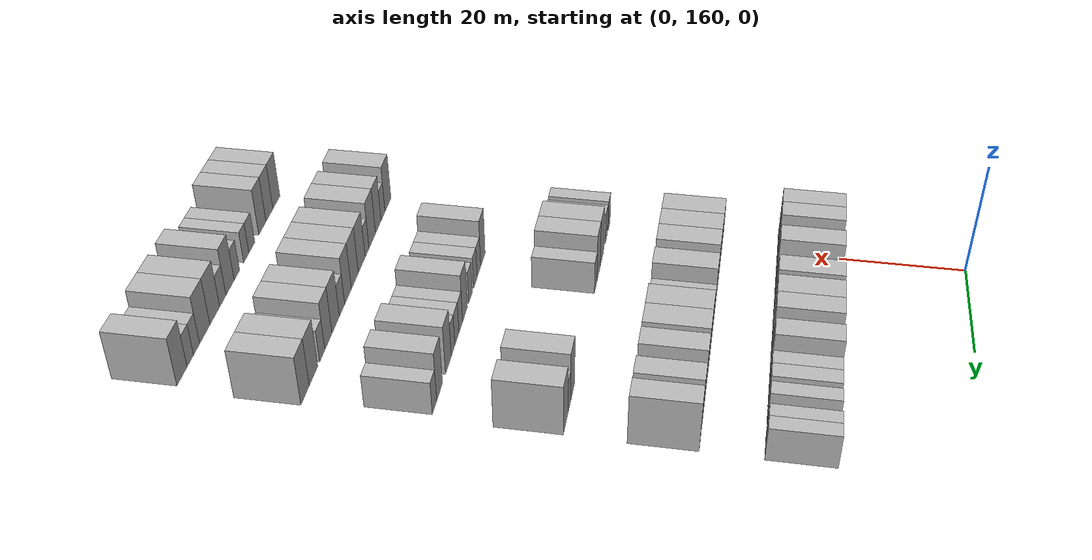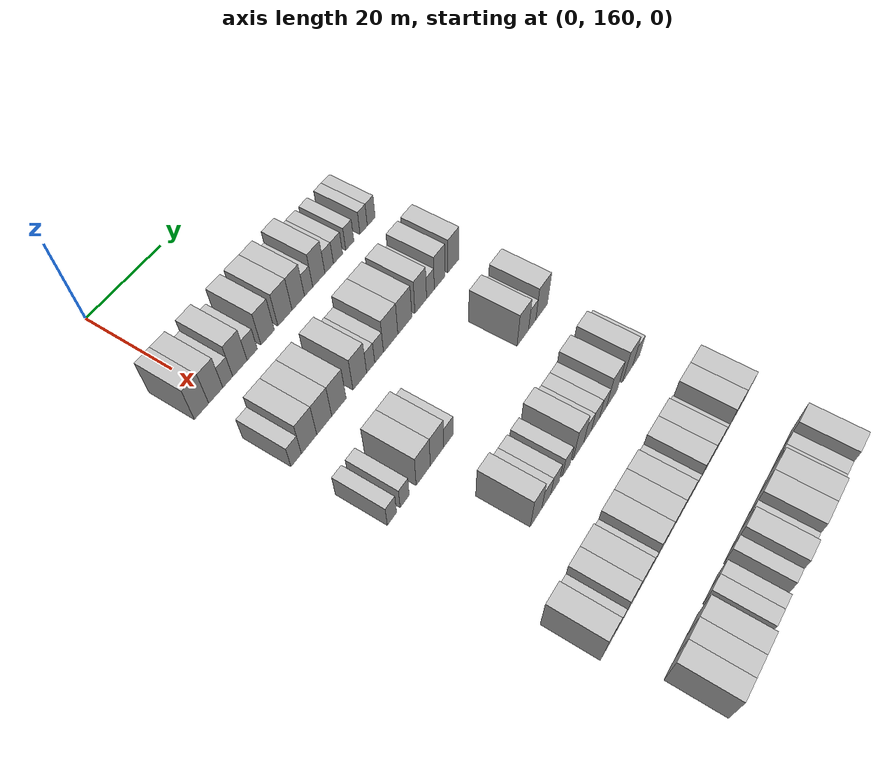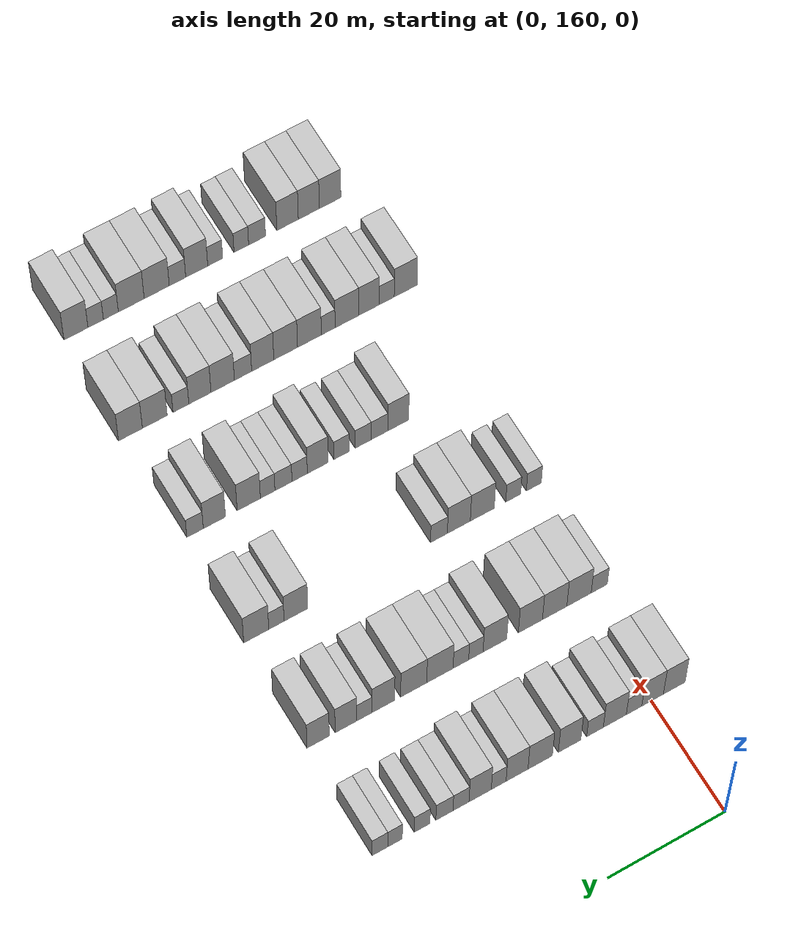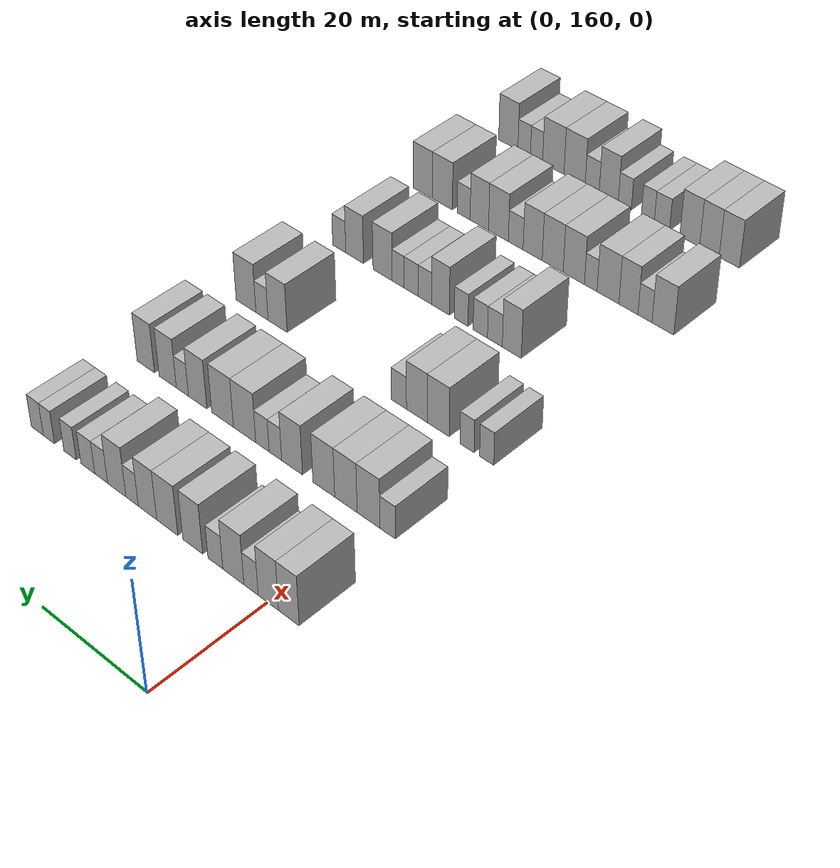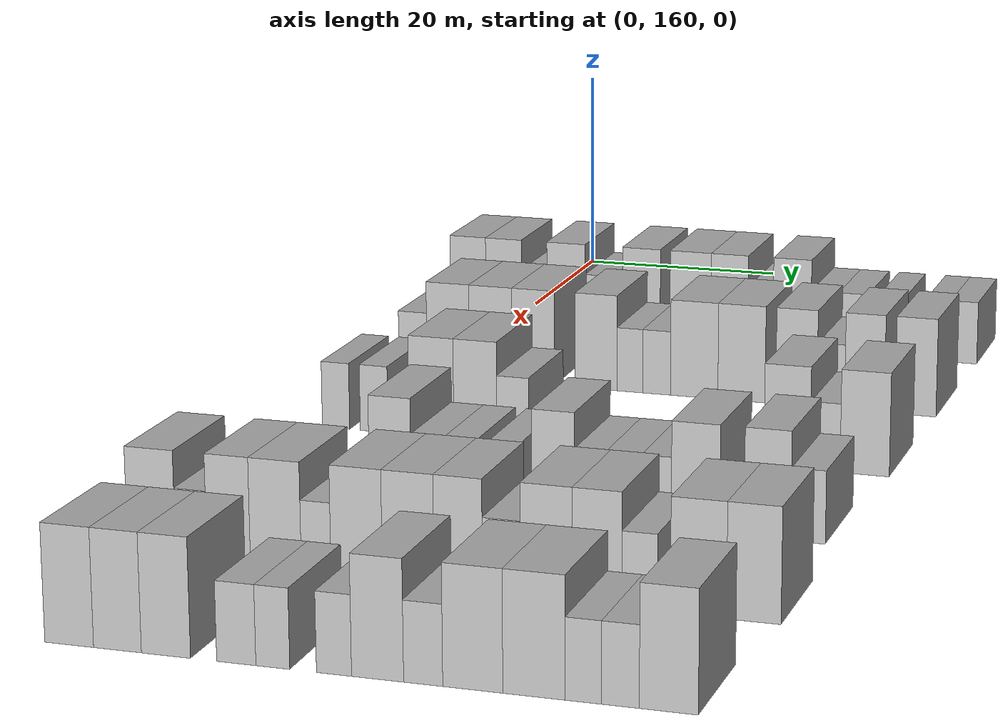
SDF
<sdf version="1.6">
 <world name="default">
  <model name="building_120">
   <static>1</static>
   <pose>25.0000 156.1392 0 0.000000 0.000000 0.000000</pose>
   <link name="link">
    <pose>0 0 4.50 0 0 0</pose>
    <collision name="collision"><geometry><box><size>10.0000 3.7222 9.0000</size></box></geometry></collision>
    <visual name="visual">
     <cast_shadows>0</cast_shadows>
     <geometry><box><size>10.0000 3.7222 9.0000</size></box></geometry>
     <material>
      <script>
       <uri>model://HANNAS_wall/materials/scripts</uri>
       <uri>model://HANNAS_wall/materials/textures</uri>
       <name>vrc/HANNAS_wall</name>
      </script>
     </material>
    </visual>
   </link>
  </model>
  <model name="building_121">
   <static>1</static>
   <pose>25.0000 159.8605 0 0.000000 0.000000 0.000000</pose>
   <link name="link">
    <pose>0 0 4.50 0 0 0</pose>
    <collision name="collision"><geometry><box><size>10.0000 3.7204 9.0000</size></box></geometry></collision>
    <visual name="visual">
     <cast_shadows>0</cast_shadows>
     <geometry><box><size>10.0000 3.7204 9.0000</size></box></geometry>
     <material>
      <script>
       <uri>model://HANNAS_wall/materials/scripts</uri>
       <uri>model://HANNAS_wall/materials/textures</uri>
       <name>vrc/HANNAS_wall</name>
      </script>
     </material>
    </visual>
   </link>
  </model>
  <model name="building_122">
   <static>1</static>
   <pose>25.0000 163.0452 0 0.000000 0.000000 0.000000</pose>
   <link name="link">
    <pose>0 0 3.00 0 0 0</pose>
    <collision name="collision"><geometry><box><size>10.0000 2.6491 6.0000</size></box></geometry></collision>
    <visual name="visual">
     <cast_shadows>0</cast_shadows>
     <geometry><box><size>10.0000 2.6491 6.0000</size></box></geometry>
     <material>
      <script>
       <uri>model://HANNAS_wall/materials/scripts</uri>
       <uri>model://HANNAS_wall/materials/textures</uri>
       <name>vrc/HANNAS_wall</name>
      </script>
     </material>
    </visual>
   </link>
  </model>
  <model name="building_123">
   <static>1</static>
   <pose>25.0000 166.3404 0 0.000000 0.000000 0.000000</pose>
   <link name="link">
    <pose>0 0 4.50 0 0 0</pose>
    <collision name="collision"><geometry><box><size>10.0000 3.9413 9.0000</size></box></geometry></collision>
    <visual name="visual">
     <cast_shadows>0</cast_shadows>
     <geometry><box><size>10.0000 3.9413 9.0000</size></box></geometry>
     <material>
      <script>
       <uri>model://HANNAS_wall/materials/scripts</uri>
       <uri>model://HANNAS_wall/materials/textures</uri>
       <name>vrc/HANNAS_wall</name>
      </script>
     </material>
    </visual>
   </link>
  </model>
  <model name="building_124">
   <static>1</static>
   <pose>25.0000 169.7252 0 0.000000 0.000000 0.000000</pose>
   <link name="link">
    <pose>0 0 3.00 0 0 0</pose>
    <collision name="collision"><geometry><box><size>10.0000 2.8284 6.0000</size></box></geometry></collision>
    <visual name="visual">
     <cast_shadows>0</cast_shadows>
     <geometry><box><size>10.0000 2.8284 6.0000</size></box></geometry>
     <material>
      <script>
       <uri>model://HANNAS_wall/materials/scripts</uri>
       <uri>model://HANNAS_wall/materials/textures</uri>
       <name>vrc/HANNAS_wall</name>
      </script>
     </material>
    </visual>
   </link>
  </model>
  <model name="building_125">
   <static>1</static>
   <pose>25.0000 174.0568 0 0.000000 0.000000 0.000000</pose>
   <link name="link">
    <pose>0 0 4.50 0 0 0</pose>
    <collision name="collision"><geometry><box><size>10.0000 3.8347 9.0000</size></box></geometry></collision>
    <visual name="visual">
     <cast_shadows>0</cast_shadows>
     <geometry><box><size>10.0000 3.8347 9.0000</size></box></geometry>
     <material>
      <script>
       <uri>model://HANNAS_wall/materials/scripts</uri>
       <uri>model://HANNAS_wall/materials/textures</uri>
       <name>vrc/HANNAS_wall</name>
      </script>
     </material>
    </visual>
   </link>
  </model>
  <model name="building_126">
   <static>1</static>
   <pose>25.0000 179.0432 0 0.000000 0.000000 0.000000</pose>
   <link name="link">
    <pose>0 0 4.50 0 0 0</pose>
    <collision name="collision"><geometry><box><size>10.0000 4.1382 9.0000</size></box></geometry></collision>
    <visual name="visual">
     <cast_shadows>0</cast_shadows>
     <geometry><box><size>10.0000 4.1382 9.0000</size></box></geometry>
     <material>
      <script>
       <uri>model://HANNAS_wall/materials/scripts</uri>
       <uri>model://HANNAS_wall/materials/textures</uri>
       <name>vrc/HANNAS_wall</name>
      </script>
     </material>
    </visual>
   </link>
  </model>
  <model name="building_127">
   <static>1</static>
   <pose>25.0000 182.9619 0 0.000000 0.000000 0.000000</pose>
   <link name="link">
    <pose>0 0 4.50 0 0 0</pose>
    <collision name="collision"><geometry><box><size>10.0000 3.6990 9.0000</size></box></geometry></collision>
    <visual name="visual">
     <cast_shadows>0</cast_shadows>
     <geometry><box><size>10.0000 3.6990 9.0000</size></box></geometry>
     <material>
      <script>
       <uri>model://HANNAS_wall/materials/scripts</uri>
       <uri>model://HANNAS_wall/materials/textures</uri>
       <name>vrc/HANNAS_wall</name>
      </script>
     </material>
    </visual>
   </link>
  </model>
  <model name="building_128">
   <static>1</static>
   <pose>25.0000 186.0585 0 0.000000 0.000000 0.000000</pose>
   <link name="link">
    <pose>0 0 3.00 0 0 0</pose>
    <collision name="collision"><geometry><box><size>10.0000 2.4944 6.0000</size></box></geometry></collision>
    <visual name="visual">
     <cast_shadows>0</cast_shadows>
     <geometry><box><size>10.0000 2.4944 6.0000</size></box></geometry>
     <material>
      <script>
       <uri>model://HANNAS_wall/materials/scripts</uri>
       <uri>model://HANNAS_wall/materials/textures</uri>
       <name>vrc/HANNAS_wall</name>
      </script>
     </material>
    </visual>
   </link>
  </model>
  <model name="building_129">
   <static>1</static>
   <pose>25.0000 189.1773 0 0.000000 0.000000 0.000000</pose>
   <link name="link">
    <pose>0 0 4.50 0 0 0</pose>
    <collision name="collision"><geometry><box><size>10.0000 3.7433 9.0000</size></box></geometry></collision>
    <visual name="visual">
     <cast_shadows>0</cast_shadows>
     <geometry><box><size>10.0000 3.7433 9.0000</size></box></geometry>
     <material>
      <script>
       <uri>model://HANNAS_wall/materials/scripts</uri>
       <uri>model://HANNAS_wall/materials/textures</uri>
       <name>vrc/HANNAS_wall</name>
      </script>
     </material>
    </visual>
   </link>
  </model>
  <model name="building_130">
   <static>1</static>
   <pose>25.0000 192.3889 0 0.000000 0.000000 0.000000</pose>
   <link name="link">
    <pose>0 0 3.00 0 0 0</pose>
    <collision name="collision"><geometry><box><size>10.0000 2.6798 6.0000</size></box></geometry></collision>
    <visual name="visual">
     <cast_shadows>0</cast_shadows>
     <geometry><box><size>10.0000 2.6798 6.0000</size></box></geometry>
     <material>
      <script>
       <uri>model://HANNAS_wall/materials/scripts</uri>
       <uri>model://HANNAS_wall/materials/textures</uri>
       <name>vrc/HANNAS_wall</name>
      </script>
     </material>
    </visual>
   </link>
  </model>
  <model name="building_131">
   <static>1</static>
   <pose>25.0000 195.1668 0 0.000000 0.000000 0.000000</pose>
   <link name="link">
    <pose>0 0 3.00 0 0 0</pose>
    <collision name="collision"><geometry><box><size>10.0000 2.8759 6.0000</size></box></geometry></collision>
    <visual name="visual">
     <cast_shadows>0</cast_shadows>
     <geometry><box><size>10.0000 2.8759 6.0000</size></box></geometry>
     <material>
      <script>
       <uri>model://HANNAS_wall/materials/scripts</uri>
       <uri>model://HANNAS_wall/materials/textures</uri>
       <name>vrc/HANNAS_wall</name>
      </script>
     </material>
    </visual>
   </link>
  </model>
  <model name="building_132">
   <static>1</static>
   <pose>25.0000 198.9132 0 0.000000 0.000000 0.000000</pose>
   <link name="link">
    <pose>0 0 3.00 0 0 0</pose>
    <collision name="collision"><geometry><box><size>10.0000 2.6169 6.0000</size></box></geometry></collision>
    <visual name="visual">
     <cast_shadows>0</cast_shadows>
     <geometry><box><size>10.0000 2.6169 6.0000</size></box></geometry>
     <material>
      <script>
       <uri>model://HANNAS_wall/materials/scripts</uri>
       <uri>model://HANNAS_wall/materials/textures</uri>
       <name>vrc/HANNAS_wall</name>
      </script>
     </material>
    </visual>
   </link>
  </model>
  <model name="building_133">
   <static>1</static>
   <pose>25.0000 203.4217 0 0.000000 0.000000 0.000000</pose>
   <link name="link">
    <pose>0 0 3.00 0 0 0</pose>
    <collision name="collision"><geometry><box><size>10.0000 2.4001 6.0000</size></box></geometry></collision>
    <visual name="visual">
     <cast_shadows>0</cast_shadows>
     <geometry><box><size>10.0000 2.4001 6.0000</size></box></geometry>
     <material>
      <script>
       <uri>model://HANNAS_wall/materials/scripts</uri>
       <uri>model://HANNAS_wall/materials/textures</uri>
       <name>vrc/HANNAS_wall</name>
      </script>
     </material>
    </visual>
   </link>
  </model>
  <model name="building_134">
   <static>1</static>
   <pose>25.0000 205.9325 0 0.000000 0.000000 0.000000</pose>
   <link name="link">
    <pose>0 0 3.00 0 0 0</pose>
    <collision name="collision"><geometry><box><size>10.0000 2.6216 6.0000</size></box></geometry></collision>
    <visual name="visual">
     <cast_shadows>0</cast_shadows>
     <geometry><box><size>10.0000 2.6216 6.0000</size></box></geometry>
     <material>
      <script>
       <uri>model://HANNAS_wall/materials/scripts</uri>
       <uri>model://HANNAS_wall/materials/textures</uri>
       <name>vrc/HANNAS_wall</name>
      </script>
     </material>
    </visual>
   </link>
  </model>
  <model name="building_296">
   <static>1</static>
   <pose>44.0000 157.2498 0 0.000000 0.000000 0.000000</pose>
   <link name="link">
    <pose>0 0 3.00 0 0 0</pose>
    <collision name="collision"><geometry><box><size>10.0000 2.7918 6.0000</size></box></geometry></collision>
    <visual name="visual">
     <cast_shadows>0</cast_shadows>
     <geometry><box><size>10.0000 2.7918 6.0000</size></box></geometry>
     <material>
      <script>
       <uri>model://HANNAS_wall/materials/scripts</uri>
       <uri>model://HANNAS_wall/materials/textures</uri>
       <name>vrc/HANNAS_wall</name>
      </script>
     </material>
    </visual>
   </link>
  </model>
  <model name="building_297">
   <static>1</static>
   <pose>44.0000 160.7525 0 0.000000 0.000000 0.000000</pose>
   <link name="link">
    <pose>0 0 4.50 0 0 0</pose>
    <collision name="collision"><geometry><box><size>10.0000 4.2136 9.0000</size></box></geometry></collision>
    <visual name="visual">
     <cast_shadows>0</cast_shadows>
     <geometry><box><size>10.0000 4.2136 9.0000</size></box></geometry>
     <material>
      <script>
       <uri>model://HANNAS_wall/materials/scripts</uri>
       <uri>model://HANNAS_wall/materials/textures</uri>
       <name>vrc/HANNAS_wall</name>
      </script>
     </material>
    </visual>
   </link>
  </model>
  <model name="building_298">
   <static>1</static>
   <pose>44.0000 164.9583 0 0.000000 0.000000 0.000000</pose>
   <link name="link">
    <pose>0 0 4.50 0 0 0</pose>
    <collision name="collision"><geometry><box><size>10.0000 4.1980 9.0000</size></box></geometry></collision>
    <visual name="visual">
     <cast_shadows>0</cast_shadows>
     <geometry><box><size>10.0000 4.1980 9.0000</size></box></geometry>
     <material>
      <script>
       <uri>model://HANNAS_wall/materials/scripts</uri>
       <uri>model://HANNAS_wall/materials/textures</uri>
       <name>vrc/HANNAS_wall</name>
      </script>
     </material>
    </visual>
   </link>
  </model>
  <model name="building_299">
   <static>1</static>
   <pose>44.0000 169.1252 0 0.000000 0.000000 0.000000</pose>
   <link name="link">
    <pose>0 0 4.50 0 0 0</pose>
    <collision name="collision"><geometry><box><size>10.0000 4.1358 9.0000</size></box></geometry></collision>
    <visual name="visual">
     <cast_shadows>0</cast_shadows>
     <geometry><box><size>10.0000 4.1358 9.0000</size></box></geometry>
     <material>
      <script>
       <uri>model://HANNAS_wall/materials/scripts</uri>
       <uri>model://HANNAS_wall/materials/textures</uri>
       <name>vrc/HANNAS_wall</name>
      </script>
     </material>
    </visual>
   </link>
  </model>
  <model name="building_300">
   <static>1</static>
   <pose>44.0000 175.2181 0 0.000000 0.000000 0.000000</pose>
   <link name="link">
    <pose>0 0 4.50 0 0 0</pose>
    <collision name="collision"><geometry><box><size>10.0000 4.0500 9.0000</size></box></geometry></collision>
    <visual name="visual">
     <cast_shadows>0</cast_shadows>
     <geometry><box><size>10.0000 4.0500 9.0000</size></box></geometry>
     <material>
      <script>
       <uri>model://HANNAS_wall/materials/scripts</uri>
       <uri>model://HANNAS_wall/materials/textures</uri>
       <name>vrc/HANNAS_wall</name>
      </script>
     </material>
    </visual>
   </link>
  </model>
  <model name="building_301">
   <static>1</static>
   <pose>44.0000 178.4672 0 0.000000 0.000000 0.000000</pose>
   <link name="link">
    <pose>0 0 3.00 0 0 0</pose>
    <collision name="collision"><geometry><box><size>10.0000 2.4483 6.0000</size></box></geometry></collision>
    <visual name="visual">
     <cast_shadows>0</cast_shadows>
     <geometry><box><size>10.0000 2.4483 6.0000</size></box></geometry>
     <material>
      <script>
       <uri>model://HANNAS_wall/materials/scripts</uri>
       <uri>model://HANNAS_wall/materials/textures</uri>
       <name>vrc/HANNAS_wall</name>
      </script>
     </material>
    </visual>
   </link>
  </model>
  <model name="building_302">
   <static>1</static>
   <pose>44.0000 181.0196 0 0.000000 0.000000 0.000000</pose>
   <link name="link">
    <pose>0 0 3.00 0 0 0</pose>
    <collision name="collision"><geometry><box><size>10.0000 2.6566 6.0000</size></box></geometry></collision>
    <visual name="visual">
     <cast_shadows>0</cast_shadows>
     <geometry><box><size>10.0000 2.6566 6.0000</size></box></geometry>
     <material>
      <script>
       <uri>model://HANNAS_wall/materials/scripts</uri>
       <uri>model://HANNAS_wall/materials/textures</uri>
       <name>vrc/HANNAS_wall</name>
      </script>
     </material>
    </visual>
   </link>
  </model>
  <model name="building_303">
   <static>1</static>
   <pose>44.0000 184.5912 0 0.000000 0.000000 0.000000</pose>
   <link name="link">
    <pose>0 0 4.50 0 0 0</pose>
    <collision name="collision"><geometry><box><size>10.0000 4.4866 9.0000</size></box></geometry></collision>
    <visual name="visual">
     <cast_shadows>0</cast_shadows>
     <geometry><box><size>10.0000 4.4866 9.0000</size></box></geometry>
     <material>
      <script>
       <uri>model://HANNAS_wall/materials/scripts</uri>
       <uri>model://HANNAS_wall/materials/textures</uri>
       <name>vrc/HANNAS_wall</name>
      </script>
     </material>
    </visual>
   </link>
  </model>
  <model name="building_304">
   <static>1</static>
   <pose>44.0000 189.0500 0 0.000000 0.000000 0.000000</pose>
   <link name="link">
    <pose>0 0 4.50 0 0 0</pose>
    <collision name="collision"><geometry><box><size>10.0000 4.4309 9.0000</size></box></geometry></collision>
    <visual name="visual">
     <cast_shadows>0</cast_shadows>
     <geometry><box><size>10.0000 4.4309 9.0000</size></box></geometry>
     <material>
      <script>
       <uri>model://HANNAS_wall/materials/scripts</uri>
       <uri>model://HANNAS_wall/materials/textures</uri>
       <name>vrc/HANNAS_wall</name>
      </script>
     </material>
    </visual>
   </link>
  </model>
  <model name="building_305">
   <static>1</static>
   <pose>44.0000 194.1765 0 0.000000 0.000000 0.000000</pose>
   <link name="link">
    <pose>0 0 4.50 0 0 0</pose>
    <collision name="collision"><geometry><box><size>10.0000 3.8220 9.0000</size></box></geometry></collision>
    <visual name="visual">
     <cast_shadows>0</cast_shadows>
     <geometry><box><size>10.0000 3.8220 9.0000</size></box></geometry>
     <material>
      <script>
       <uri>model://HANNAS_wall/materials/scripts</uri>
       <uri>model://HANNAS_wall/materials/textures</uri>
       <name>vrc/HANNAS_wall</name>
      </script>
     </material>
    </visual>
   </link>
  </model>
  <model name="building_306">
   <static>1</static>
   <pose>44.0000 197.3655 0 0.000000 0.000000 0.000000</pose>
   <link name="link">
    <pose>0 0 3.00 0 0 0</pose>
    <collision name="collision"><geometry><box><size>10.0000 2.5560 6.0000</size></box></geometry></collision>
    <visual name="visual">
     <cast_shadows>0</cast_shadows>
     <geometry><box><size>10.0000 2.5560 6.0000</size></box></geometry>
     <material>
      <script>
       <uri>model://HANNAS_wall/materials/scripts</uri>
       <uri>model://HANNAS_wall/materials/textures</uri>
       <name>vrc/HANNAS_wall</name>
      </script>
     </material>
    </visual>
   </link>
  </model>
  <model name="building_307">
   <static>1</static>
   <pose>44.0000 200.4665 0 0.000000 0.000000 0.000000</pose>
   <link name="link">
    <pose>0 0 4.50 0 0 0</pose>
    <collision name="collision"><geometry><box><size>10.0000 3.6460 9.0000</size></box></geometry></collision>
    <visual name="visual">
     <cast_shadows>0</cast_shadows>
     <geometry><box><size>10.0000 3.6460 9.0000</size></box></geometry>
     <material>
      <script>
       <uri>model://HANNAS_wall/materials/scripts</uri>
       <uri>model://HANNAS_wall/materials/textures</uri>
       <name>vrc/HANNAS_wall</name>
      </script>
     </material>
    </visual>
   </link>
  </model>
  <model name="building_308">
   <static>1</static>
   <pose>44.0000 205.1504 0 0.000000 0.000000 0.000000</pose>
   <link name="link">
    <pose>0 0 4.50 0 0 0</pose>
    <collision name="collision"><geometry><box><size>10.0000 3.7219 9.0000</size></box></geometry></collision>
    <visual name="visual">
     <cast_shadows>0</cast_shadows>
     <geometry><box><size>10.0000 3.7219 9.0000</size></box></geometry>
     <material>
      <script>
       <uri>model://HANNAS_wall/materials/scripts</uri>
       <uri>model://HANNAS_wall/materials/textures</uri>
       <name>vrc/HANNAS_wall</name>
      </script>
     </material>
    </visual>
   </link>
  </model>
  <model name="building_462">
   <static>1</static>
   <pose>63.0000 156.9721 0 0.000000 0.000000 0.000000</pose>
   <link name="link">
    <pose>0 0 3.00 0 0 0</pose>
    <collision name="collision"><geometry><box><size>10.0000 2.5906 6.0000</size></box></geometry></collision>
    <visual name="visual">
     <cast_shadows>0</cast_shadows>
     <geometry><box><size>10.0000 2.5906 6.0000</size></box></geometry>
     <material>
      <script>
       <uri>model://HANNAS_wall/materials/scripts</uri>
       <uri>model://HANNAS_wall/materials/textures</uri>
       <name>vrc/HANNAS_wall</name>
      </script>
     </material>
    </visual>
   </link>
  </model>
  <model name="building_463">
   <static>1</static>
   <pose>63.0000 160.5625 0 0.000000 0.000000 0.000000</pose>
   <link name="link">
    <pose>0 0 3.00 0 0 0</pose>
    <collision name="collision"><geometry><box><size>10.0000 2.5902 6.0000</size></box></geometry></collision>
    <visual name="visual">
     <cast_shadows>0</cast_shadows>
     <geometry><box><size>10.0000 2.5902 6.0000</size></box></geometry>
     <material>
      <script>
       <uri>model://HANNAS_wall/materials/scripts</uri>
       <uri>model://HANNAS_wall/materials/textures</uri>
       <name>vrc/HANNAS_wall</name>
      </script>
     </material>
    </visual>
   </link>
  </model>
  <model name="building_464">
   <static>1</static>
   <pose>63.0000 165.9317 0 0.000000 0.000000 0.000000</pose>
   <link name="link">
    <pose>0 0 4.50 0 0 0</pose>
    <collision name="collision"><geometry><box><size>10.0000 4.1482 9.0000</size></box></geometry></collision>
    <visual name="visual">
     <cast_shadows>0</cast_shadows>
     <geometry><box><size>10.0000 4.1482 9.0000</size></box></geometry>
     <material>
      <script>
       <uri>model://HANNAS_wall/materials/scripts</uri>
       <uri>model://HANNAS_wall/materials/textures</uri>
       <name>vrc/HANNAS_wall</name>
      </script>
     </material>
    </visual>
   </link>
  </model>
  <model name="building_465">
   <static>1</static>
   <pose>63.0000 169.9906 0 0.000000 0.000000 0.000000</pose>
   <link name="link">
    <pose>0 0 4.50 0 0 0</pose>
    <collision name="collision"><geometry><box><size>10.0000 3.9696 9.0000</size></box></geometry></collision>
    <visual name="visual">
     <cast_shadows>0</cast_shadows>
     <geometry><box><size>10.0000 3.9696 9.0000</size></box></geometry>
     <material>
      <script>
       <uri>model://HANNAS_wall/materials/scripts</uri>
       <uri>model://HANNAS_wall/materials/textures</uri>
       <name>vrc/HANNAS_wall</name>
      </script>
     </material>
    </visual>
   </link>
  </model>
  <model name="building_466">
   <static>1</static>
   <pose>63.0000 173.4307 0 0.000000 0.000000 0.000000</pose>
   <link name="link">
    <pose>0 0 3.00 0 0 0</pose>
    <collision name="collision"><geometry><box><size>10.0000 2.9105 6.0000</size></box></geometry></collision>
    <visual name="visual">
     <cast_shadows>0</cast_shadows>
     <geometry><box><size>10.0000 2.9105 6.0000</size></box></geometry>
     <material>
      <script>
       <uri>model://HANNAS_wall/materials/scripts</uri>
       <uri>model://HANNAS_wall/materials/textures</uri>
       <name>vrc/HANNAS_wall</name>
      </script>
     </material>
    </visual>
   </link>
  </model>
  <model name="building_467">
   <static>1</static>
   <pose>63.0000 197.9041 0 0.000000 0.000000 0.000000</pose>
   <link name="link">
    <pose>0 0 4.50 0 0 0</pose>
    <collision name="collision"><geometry><box><size>10.0000 4.0121 9.0000</size></box></geometry></collision>
    <visual name="visual">
     <cast_shadows>0</cast_shadows>
     <geometry><box><size>10.0000 4.0121 9.0000</size></box></geometry>
     <material>
      <script>
       <uri>model://HANNAS_wall/materials/scripts</uri>
       <uri>model://HANNAS_wall/materials/textures</uri>
       <name>vrc/HANNAS_wall</name>
      </script>
     </material>
    </visual>
   </link>
  </model>
  <model name="building_468">
   <static>1</static>
   <pose>63.0000 201.2059 0 0.000000 0.000000 0.000000</pose>
   <link name="link">
    <pose>0 0 3.00 0 0 0</pose>
    <collision name="collision"><geometry><box><size>10.0000 2.5914 6.0000</size></box></geometry></collision>
    <visual name="visual">
     <cast_shadows>0</cast_shadows>
     <geometry><box><size>10.0000 2.5914 6.0000</size></box></geometry>
     <material>
      <script>
       <uri>model://HANNAS_wall/materials/scripts</uri>
       <uri>model://HANNAS_wall/materials/textures</uri>
       <name>vrc/HANNAS_wall</name>
      </script>
     </material>
    </visual>
   </link>
  </model>
  <model name="building_469">
   <static>1</static>
   <pose>63.0000 204.6184 0 0.000000 0.000000 0.000000</pose>
   <link name="link">
    <pose>0 0 4.50 0 0 0</pose>
    <collision name="collision"><geometry><box><size>10.0000 4.2335 9.0000</size></box></geometry></collision>
    <visual name="visual">
     <cast_shadows>0</cast_shadows>
     <geometry><box><size>10.0000 4.2335 9.0000</size></box></geometry>
     <material>
      <script>
       <uri>model://HANNAS_wall/materials/scripts</uri>
       <uri>model://HANNAS_wall/materials/textures</uri>
       <name>vrc/HANNAS_wall</name>
      </script>
     </material>
    </visual>
   </link>
  </model>
  <model name="building_628">
   <static>1</static>
   <pose>82.0000 169.2119 0 0.000000 0.000000 0.000000</pose>
   <link name="link">
    <pose>0 0 4.50 0 0 0</pose>
    <collision name="collision"><geometry><box><size>10.0000 3.6254 9.0000</size></box></geometry></collision>
    <visual name="visual">
     <cast_shadows>0</cast_shadows>
     <geometry><box><size>10.0000 3.6254 9.0000</size></box></geometry>
     <material>
      <script>
       <uri>model://HANNAS_wall/materials/scripts</uri>
       <uri>model://HANNAS_wall/materials/textures</uri>
       <name>vrc/HANNAS_wall</name>
      </script>
     </material>
    </visual>
   </link>
  </model>
  <model name="building_629">
   <static>1</static>
   <pose>82.0000 172.4588 0 0.000000 0.000000 0.000000</pose>
   <link name="link">
    <pose>0 0 3.00 0 0 0</pose>
    <collision name="collision"><geometry><box><size>10.0000 2.8684 6.0000</size></box></geometry></collision>
    <visual name="visual">
     <cast_shadows>0</cast_shadows>
     <geometry><box><size>10.0000 2.8684 6.0000</size></box></geometry>
     <material>
      <script>
       <uri>model://HANNAS_wall/materials/scripts</uri>
       <uri>model://HANNAS_wall/materials/textures</uri>
       <name>vrc/HANNAS_wall</name>
      </script>
     </material>
    </visual>
   </link>
  </model>
  <model name="building_630">
   <static>1</static>
   <pose>82.0000 175.2945 0 0.000000 0.000000 0.000000</pose>
   <link name="link">
    <pose>0 0 3.00 0 0 0</pose>
    <collision name="collision"><geometry><box><size>10.0000 2.8031 6.0000</size></box></geometry></collision>
    <visual name="visual">
     <cast_shadows>0</cast_shadows>
     <geometry><box><size>10.0000 2.8031 6.0000</size></box></geometry>
     <material>
      <script>
       <uri>model://HANNAS_wall/materials/scripts</uri>
       <uri>model://HANNAS_wall/materials/textures</uri>
       <name>vrc/HANNAS_wall</name>
      </script>
     </material>
    </visual>
   </link>
  </model>
  <model name="building_631">
   <static>1</static>
   <pose>82.0000 179.0340 0 0.000000 0.000000 0.000000</pose>
   <link name="link">
    <pose>0 0 3.00 0 0 0</pose>
    <collision name="collision"><geometry><box><size>10.0000 2.6757 6.0000</size></box></geometry></collision>
    <visual name="visual">
     <cast_shadows>0</cast_shadows>
     <geometry><box><size>10.0000 2.6757 6.0000</size></box></geometry>
     <material>
      <script>
       <uri>model://HANNAS_wall/materials/scripts</uri>
       <uri>model://HANNAS_wall/materials/textures</uri>
       <name>vrc/HANNAS_wall</name>
      </script>
     </material>
    </visual>
   </link>
  </model>
  <model name="building_632">
   <static>1</static>
   <pose>82.0000 183.1729 0 0.000000 0.000000 0.000000</pose>
   <link name="link">
    <pose>0 0 4.50 0 0 0</pose>
    <collision name="collision"><geometry><box><size>10.0000 3.6021 9.0000</size></box></geometry></collision>
    <visual name="visual">
     <cast_shadows>0</cast_shadows>
     <geometry><box><size>10.0000 3.6021 9.0000</size></box></geometry>
     <material>
      <script>
       <uri>model://HANNAS_wall/materials/scripts</uri>
       <uri>model://HANNAS_wall/materials/textures</uri>
       <name>vrc/HANNAS_wall</name>
      </script>
     </material>
    </visual>
   </link>
  </model>
  <model name="building_633">
   <static>1</static>
   <pose>82.0000 186.2939 0 0.000000 0.000000 0.000000</pose>
   <link name="link">
    <pose>0 0 3.00 0 0 0</pose>
    <collision name="collision"><geometry><box><size>10.0000 2.6398 6.0000</size></box></geometry></collision>
    <visual name="visual">
     <cast_shadows>0</cast_shadows>
     <geometry><box><size>10.0000 2.6398 6.0000</size></box></geometry>
     <material>
      <script>
       <uri>model://HANNAS_wall/materials/scripts</uri>
       <uri>model://HANNAS_wall/materials/textures</uri>
       <name>vrc/HANNAS_wall</name>
      </script>
     </material>
    </visual>
   </link>
  </model>
  <model name="building_634">
   <static>1</static>
   <pose>82.0000 189.0800 0 0.000000 0.000000 0.000000</pose>
   <link name="link">
    <pose>0 0 3.00 0 0 0</pose>
    <collision name="collision"><geometry><box><size>10.0000 2.9323 6.0000</size></box></geometry></collision>
    <visual name="visual">
     <cast_shadows>0</cast_shadows>
     <geometry><box><size>10.0000 2.9323 6.0000</size></box></geometry>
     <material>
      <script>
       <uri>model://HANNAS_wall/materials/scripts</uri>
       <uri>model://HANNAS_wall/materials/textures</uri>
       <name>vrc/HANNAS_wall</name>
      </script>
     </material>
    </visual>
   </link>
  </model>
  <model name="building_635">
   <static>1</static>
   <pose>82.0000 191.7941 0 0.000000 0.000000 0.000000</pose>
   <link name="link">
    <pose>0 0 3.00 0 0 0</pose>
    <collision name="collision"><geometry><box><size>10.0000 2.4959 6.0000</size></box></geometry></collision>
    <visual name="visual">
     <cast_shadows>0</cast_shadows>
     <geometry><box><size>10.0000 2.4959 6.0000</size></box></geometry>
     <material>
      <script>
       <uri>model://HANNAS_wall/materials/scripts</uri>
       <uri>model://HANNAS_wall/materials/textures</uri>
       <name>vrc/HANNAS_wall</name>
      </script>
     </material>
    </visual>
   </link>
  </model>
  <model name="building_636">
   <static>1</static>
   <pose>82.0000 195.0324 0 0.000000 0.000000 0.000000</pose>
   <link name="link">
    <pose>0 0 4.50 0 0 0</pose>
    <collision name="collision"><geometry><box><size>10.0000 3.9809 9.0000</size></box></geometry></collision>
    <visual name="visual">
     <cast_shadows>0</cast_shadows>
     <geometry><box><size>10.0000 3.9809 9.0000</size></box></geometry>
     <material>
      <script>
       <uri>model://HANNAS_wall/materials/scripts</uri>
       <uri>model://HANNAS_wall/materials/textures</uri>
       <name>vrc/HANNAS_wall</name>
      </script>
     </material>
    </visual>
   </link>
  </model>
  <model name="building_637">
   <static>1</static>
   <pose>82.0000 200.9105 0 0.000000 0.000000 0.000000</pose>
   <link name="link">
    <pose>0 0 4.50 0 0 0</pose>
    <collision name="collision"><geometry><box><size>10.0000 3.7753 9.0000</size></box></geometry></collision>
    <visual name="visual">
     <cast_shadows>0</cast_shadows>
     <geometry><box><size>10.0000 3.7753 9.0000</size></box></geometry>
     <material>
      <script>
       <uri>model://HANNAS_wall/materials/scripts</uri>
       <uri>model://HANNAS_wall/materials/textures</uri>
       <name>vrc/HANNAS_wall</name>
      </script>
     </material>
    </visual>
   </link>
  </model>
  <model name="building_638">
   <static>1</static>
   <pose>82.0000 204.1999 0 0.000000 0.000000 0.000000</pose>
   <link name="link">
    <pose>0 0 3.00 0 0 0</pose>
    <collision name="collision"><geometry><box><size>10.0000 2.8035 6.0000</size></box></geometry></collision>
    <visual name="visual">
     <cast_shadows>0</cast_shadows>
     <geometry><box><size>10.0000 2.8035 6.0000</size></box></geometry>
     <material>
      <script>
       <uri>model://HANNAS_wall/materials/scripts</uri>
       <uri>model://HANNAS_wall/materials/textures</uri>
       <name>vrc/HANNAS_wall</name>
      </script>
     </material>
    </visual>
   </link>
  </model>
  <model name="building_803">
   <static>1</static>
   <pose>101.0000 156.6732 0 0.000000 0.000000 0.000000</pose>
   <link name="link">
    <pose>0 0 4.50 0 0 0</pose>
    <collision name="collision"><geometry><box><size>10.0000 4.0467 9.0000</size></box></geometry></collision>
    <visual name="visual">
     <cast_shadows>0</cast_shadows>
     <geometry><box><size>10.0000 4.0467 9.0000</size></box></geometry>
     <material>
      <script>
       <uri>model://HANNAS_wall/materials/scripts</uri>
       <uri>model://HANNAS_wall/materials/textures</uri>
       <name>vrc/HANNAS_wall</name>
      </script>
     </material>
    </visual>
   </link>
  </model>
  <model name="building_804">
   <static>1</static>
   <pose>101.0000 160.0068 0 0.000000 0.000000 0.000000</pose>
   <link name="link">
    <pose>0 0 3.00 0 0 0</pose>
    <collision name="collision"><geometry><box><size>10.0000 2.6206 6.0000</size></box></geometry></collision>
    <visual name="visual">
     <cast_shadows>0</cast_shadows>
     <geometry><box><size>10.0000 2.6206 6.0000</size></box></geometry>
     <material>
      <script>
       <uri>model://HANNAS_wall/materials/scripts</uri>
       <uri>model://HANNAS_wall/materials/textures</uri>
       <name>vrc/HANNAS_wall</name>
      </script>
     </material>
    </visual>
   </link>
  </model>
  <model name="building_805">
   <static>1</static>
   <pose>101.0000 163.1173 0 0.000000 0.000000 0.000000</pose>
   <link name="link">
    <pose>0 0 4.50 0 0 0</pose>
    <collision name="collision"><geometry><box><size>10.0000 3.6003 9.0000</size></box></geometry></collision>
    <visual name="visual">
     <cast_shadows>0</cast_shadows>
     <geometry><box><size>10.0000 3.6003 9.0000</size></box></geometry>
     <material>
      <script>
       <uri>model://HANNAS_wall/materials/scripts</uri>
       <uri>model://HANNAS_wall/materials/textures</uri>
       <name>vrc/HANNAS_wall</name>
      </script>
     </material>
    </visual>
   </link>
  </model>
  <model name="building_806">
   <static>1</static>
   <pose>101.0000 167.0109 0 0.000000 0.000000 0.000000</pose>
   <link name="link">
    <pose>0 0 4.50 0 0 0</pose>
    <collision name="collision"><geometry><box><size>10.0000 4.1868 9.0000</size></box></geometry></collision>
    <visual name="visual">
     <cast_shadows>0</cast_shadows>
     <geometry><box><size>10.0000 4.1868 9.0000</size></box></geometry>
     <material>
      <script>
       <uri>model://HANNAS_wall/materials/scripts</uri>
       <uri>model://HANNAS_wall/materials/textures</uri>
       <name>vrc/HANNAS_wall</name>
      </script>
     </material>
    </visual>
   </link>
  </model>
  <model name="building_807">
   <static>1</static>
   <pose>101.0000 170.3156 0 0.000000 0.000000 0.000000</pose>
   <link name="link">
    <pose>0 0 3.00 0 0 0</pose>
    <collision name="collision"><geometry><box><size>10.0000 2.4226 6.0000</size></box></geometry></collision>
    <visual name="visual">
     <cast_shadows>0</cast_shadows>
     <geometry><box><size>10.0000 2.4226 6.0000</size></box></geometry>
     <material>
      <script>
       <uri>model://HANNAS_wall/materials/scripts</uri>
       <uri>model://HANNAS_wall/materials/textures</uri>
       <name>vrc/HANNAS_wall</name>
      </script>
     </material>
    </visual>
   </link>
  </model>
  <model name="building_808">
   <static>1</static>
   <pose>101.0000 173.6078 0 0.000000 0.000000 0.000000</pose>
   <link name="link">
    <pose>0 0 4.50 0 0 0</pose>
    <collision name="collision"><geometry><box><size>10.0000 4.1619 9.0000</size></box></geometry></collision>
    <visual name="visual">
     <cast_shadows>0</cast_shadows>
     <geometry><box><size>10.0000 4.1619 9.0000</size></box></geometry>
     <material>
      <script>
       <uri>model://HANNAS_wall/materials/scripts</uri>
       <uri>model://HANNAS_wall/materials/textures</uri>
       <name>vrc/HANNAS_wall</name>
      </script>
     </material>
    </visual>
   </link>
  </model>
  <model name="building_809">
   <static>1</static>
   <pose>101.0000 177.7620 0 0.000000 0.000000 0.000000</pose>
   <link name="link">
    <pose>0 0 4.50 0 0 0</pose>
    <collision name="collision"><geometry><box><size>10.0000 4.1465 9.0000</size></box></geometry></collision>
    <visual name="visual">
     <cast_shadows>0</cast_shadows>
     <geometry><box><size>10.0000 4.1465 9.0000</size></box></geometry>
     <material>
      <script>
       <uri>model://HANNAS_wall/materials/scripts</uri>
       <uri>model://HANNAS_wall/materials/textures</uri>
       <name>vrc/HANNAS_wall</name>
      </script>
     </material>
    </visual>
   </link>
  </model>
  <model name="building_810">
   <static>1</static>
   <pose>101.0000 181.7598 0 0.000000 0.000000 0.000000</pose>
   <link name="link">
    <pose>0 0 4.50 0 0 0</pose>
    <collision name="collision"><geometry><box><size>10.0000 3.8491 9.0000</size></box></geometry></collision>
    <visual name="visual">
     <cast_shadows>0</cast_shadows>
     <geometry><box><size>10.0000 3.8491 9.0000</size></box></geometry>
     <material>
      <script>
       <uri>model://HANNAS_wall/materials/scripts</uri>
       <uri>model://HANNAS_wall/materials/textures</uri>
       <name>vrc/HANNAS_wall</name>
      </script>
     </material>
    </visual>
   </link>
  </model>
  <model name="building_811">
   <static>1</static>
   <pose>101.0000 185.1808 0 0.000000 0.000000 0.000000</pose>
   <link name="link">
    <pose>0 0 3.00 0 0 0</pose>
    <collision name="collision"><geometry><box><size>10.0000 2.9931 6.0000</size></box></geometry></collision>
    <visual name="visual">
     <cast_shadows>0</cast_shadows>
     <geometry><box><size>10.0000 2.9931 6.0000</size></box></geometry>
     <material>
      <script>
       <uri>model://HANNAS_wall/materials/scripts</uri>
       <uri>model://HANNAS_wall/materials/textures</uri>
       <name>vrc/HANNAS_wall</name>
      </script>
     </material>
    </visual>
   </link>
  </model>
  <model name="building_812">
   <static>1</static>
   <pose>101.0000 188.7053 0 0.000000 0.000000 0.000000</pose>
   <link name="link">
    <pose>0 0 4.50 0 0 0</pose>
    <collision name="collision"><geometry><box><size>10.0000 4.0558 9.0000</size></box></geometry></collision>
    <visual name="visual">
     <cast_shadows>0</cast_shadows>
     <geometry><box><size>10.0000 4.0558 9.0000</size></box></geometry>
     <material>
      <script>
       <uri>model://HANNAS_wall/materials/scripts</uri>
       <uri>model://HANNAS_wall/materials/textures</uri>
       <name>vrc/HANNAS_wall</name>
      </script>
     </material>
    </visual>
   </link>
  </model>
  <model name="building_813">
   <static>1</static>
   <pose>101.0000 192.6500 0 0.000000 0.000000 0.000000</pose>
   <link name="link">
    <pose>0 0 4.50 0 0 0</pose>
    <collision name="collision"><geometry><box><size>10.0000 3.8338 9.0000</size></box></geometry></collision>
    <visual name="visual">
     <cast_shadows>0</cast_shadows>
     <geometry><box><size>10.0000 3.8338 9.0000</size></box></geometry>
     <material>
      <script>
       <uri>model://HANNAS_wall/materials/scripts</uri>
       <uri>model://HANNAS_wall/materials/textures</uri>
       <name>vrc/HANNAS_wall</name>
      </script>
     </material>
    </visual>
   </link>
  </model>
  <model name="building_814">
   <static>1</static>
   <pose>101.0000 195.9304 0 0.000000 0.000000 0.000000</pose>
   <link name="link">
    <pose>0 0 3.00 0 0 0</pose>
    <collision name="collision"><geometry><box><size>10.0000 2.7270 6.0000</size></box></geometry></collision>
    <visual name="visual">
     <cast_shadows>0</cast_shadows>
     <geometry><box><size>10.0000 2.7270 6.0000</size></box></geometry>
     <material>
      <script>
       <uri>model://HANNAS_wall/materials/scripts</uri>
       <uri>model://HANNAS_wall/materials/textures</uri>
       <name>vrc/HANNAS_wall</name>
      </script>
     </material>
    </visual>
   </link>
  </model>
  <model name="building_815">
   <static>1</static>
   <pose>101.0000 200.4263 0 0.000000 0.000000 0.000000</pose>
   <link name="link">
    <pose>0 0 4.50 0 0 0</pose>
    <collision name="collision"><geometry><box><size>10.0000 4.2648 9.0000</size></box></geometry></collision>
    <visual name="visual">
     <cast_shadows>0</cast_shadows>
     <geometry><box><size>10.0000 4.2648 9.0000</size></box></geometry>
     <material>
      <script>
       <uri>model://HANNAS_wall/materials/scripts</uri>
       <uri>model://HANNAS_wall/materials/textures</uri>
       <name>vrc/HANNAS_wall</name>
      </script>
     </material>
    </visual>
   </link>
  </model>
  <model name="building_816">
   <static>1</static>
   <pose>101.0000 204.6122 0 0.000000 0.000000 0.000000</pose>
   <link name="link">
    <pose>0 0 4.50 0 0 0</pose>
    <collision name="collision"><geometry><box><size>10.0000 4.1070 9.0000</size></box></geometry></collision>
    <visual name="visual">
     <cast_shadows>0</cast_shadows>
     <geometry><box><size>10.0000 4.1070 9.0000</size></box></geometry>
     <material>
      <script>
       <uri>model://HANNAS_wall/materials/scripts</uri>
       <uri>model://HANNAS_wall/materials/textures</uri>
       <name>vrc/HANNAS_wall</name>
      </script>
     </material>
    </visual>
   </link>
  </model>
  <model name="building_984">
   <static>1</static>
   <pose>120.0000 158.9422 0 0.000000 0.000000 0.000000</pose>
   <link name="link">
    <pose>0 0 4.50 0 0 0</pose>
    <collision name="collision"><geometry><box><size>10.0000 3.8329 9.0000</size></box></geometry></collision>
    <visual name="visual">
     <cast_shadows>0</cast_shadows>
     <geometry><box><size>10.0000 3.8329 9.0000</size></box></geometry>
     <material>
      <script>
       <uri>model://HANNAS_wall/materials/scripts</uri>
       <uri>model://HANNAS_wall/materials/textures</uri>
       <name>vrc/HANNAS_wall</name>
      </script>
     </material>
    </visual>
   </link>
  </model>
  <model name="building_985">
   <static>1</static>
   <pose>120.0000 162.7211 0 0.000000 0.000000 0.000000</pose>
   <link name="link">
    <pose>0 0 4.50 0 0 0</pose>
    <collision name="collision"><geometry><box><size>10.0000 3.7248 9.0000</size></box></geometry></collision>
    <visual name="visual">
     <cast_shadows>0</cast_shadows>
     <geometry><box><size>10.0000 3.7248 9.0000</size></box></geometry>
     <material>
      <script>
       <uri>model://HANNAS_wall/materials/scripts</uri>
       <uri>model://HANNAS_wall/materials/textures</uri>
       <name>vrc/HANNAS_wall</name>
      </script>
     </material>
    </visual>
   </link>
  </model>
  <model name="building_986">
   <static>1</static>
   <pose>120.0000 166.4832 0 0.000000 0.000000 0.000000</pose>
   <link name="link">
    <pose>0 0 4.50 0 0 0</pose>
    <collision name="collision"><geometry><box><size>10.0000 3.7994 9.0000</size></box></geometry></collision>
    <visual name="visual">
     <cast_shadows>0</cast_shadows>
     <geometry><box><size>10.0000 3.7994 9.0000</size></box></geometry>
     <material>
      <script>
       <uri>model://HANNAS_wall/materials/scripts</uri>
       <uri>model://HANNAS_wall/materials/textures</uri>
       <name>vrc/HANNAS_wall</name>
      </script>
     </material>
    </visual>
   </link>
  </model>
  <model name="building_987">
   <static>1</static>
   <pose>120.0000 171.8751 0 0.000000 0.000000 0.000000</pose>
   <link name="link">
    <pose>0 0 3.00 0 0 0</pose>
    <collision name="collision"><geometry><box><size>10.0000 2.9843 6.0000</size></box></geometry></collision>
    <visual name="visual">
     <cast_shadows>0</cast_shadows>
     <geometry><box><size>10.0000 2.9843 6.0000</size></box></geometry>
     <material>
      <script>
       <uri>model://HANNAS_wall/materials/scripts</uri>
       <uri>model://HANNAS_wall/materials/textures</uri>
       <name>vrc/HANNAS_wall</name>
      </script>
     </material>
    </visual>
   </link>
  </model>
  <model name="building_988">
   <static>1</static>
   <pose>120.0000 174.6515 0 0.000000 0.000000 0.000000</pose>
   <link name="link">
    <pose>0 0 3.00 0 0 0</pose>
    <collision name="collision"><geometry><box><size>10.0000 2.5685 6.0000</size></box></geometry></collision>
    <visual name="visual">
     <cast_shadows>0</cast_shadows>
     <geometry><box><size>10.0000 2.5685 6.0000</size></box></geometry>
     <material>
      <script>
       <uri>model://HANNAS_wall/materials/scripts</uri>
       <uri>model://HANNAS_wall/materials/textures</uri>
       <name>vrc/HANNAS_wall</name>
      </script>
     </material>
    </visual>
   </link>
  </model>
  <model name="building_989">
   <static>1</static>
   <pose>120.0000 179.2478 0 0.000000 0.000000 0.000000</pose>
   <link name="link">
    <pose>0 0 3.00 0 0 0</pose>
    <collision name="collision"><geometry><box><size>10.0000 2.6241 6.0000</size></box></geometry></collision>
    <visual name="visual">
     <cast_shadows>0</cast_shadows>
     <geometry><box><size>10.0000 2.6241 6.0000</size></box></geometry>
     <material>
      <script>
       <uri>model://HANNAS_wall/materials/scripts</uri>
       <uri>model://HANNAS_wall/materials/textures</uri>
       <name>vrc/HANNAS_wall</name>
      </script>
     </material>
    </visual>
   </link>
  </model>
  <model name="building_990">
   <static>1</static>
   <pose>120.0000 182.4894 0 0.000000 0.000000 0.000000</pose>
   <link name="link">
    <pose>0 0 4.50 0 0 0</pose>
    <collision name="collision"><geometry><box><size>10.0000 3.8592 9.0000</size></box></geometry></collision>
    <visual name="visual">
     <cast_shadows>0</cast_shadows>
     <geometry><box><size>10.0000 3.8592 9.0000</size></box></geometry>
     <material>
      <script>
       <uri>model://HANNAS_wall/materials/scripts</uri>
       <uri>model://HANNAS_wall/materials/textures</uri>
       <name>vrc/HANNAS_wall</name>
      </script>
     </material>
    </visual>
   </link>
  </model>
  <model name="building_991">
   <static>1</static>
   <pose>120.0000 185.8566 0 0.000000 0.000000 0.000000</pose>
   <link name="link">
    <pose>0 0 3.00 0 0 0</pose>
    <collision name="collision"><geometry><box><size>10.0000 2.8751 6.0000</size></box></geometry></collision>
    <visual name="visual">
     <cast_shadows>0</cast_shadows>
     <geometry><box><size>10.0000 2.8751 6.0000</size></box></geometry>
     <material>
      <script>
       <uri>model://HANNAS_wall/materials/scripts</uri>
       <uri>model://HANNAS_wall/materials/textures</uri>
       <name>vrc/HANNAS_wall</name>
      </script>
     </material>
    </visual>
   </link>
  </model>
  <model name="building_992">
   <static>1</static>
   <pose>120.0000 189.4822 0 0.000000 0.000000 0.000000</pose>
   <link name="link">
    <pose>0 0 4.50 0 0 0</pose>
    <collision name="collision"><geometry><box><size>10.0000 4.3761 9.0000</size></box></geometry></collision>
    <visual name="visual">
     <cast_shadows>0</cast_shadows>
     <geometry><box><size>10.0000 4.3761 9.0000</size></box></geometry>
     <material>
      <script>
       <uri>model://HANNAS_wall/materials/scripts</uri>
       <uri>model://HANNAS_wall/materials/textures</uri>
       <name>vrc/HANNAS_wall</name>
      </script>
     </material>
    </visual>
   </link>
  </model>
  <model name="building_993">
   <static>1</static>
   <pose>120.0000 193.9168 0 0.000000 0.000000 0.000000</pose>
   <link name="link">
    <pose>0 0 4.50 0 0 0</pose>
    <collision name="collision"><geometry><box><size>10.0000 4.4930 9.0000</size></box></geometry></collision>
    <visual name="visual">
     <cast_shadows>0</cast_shadows>
     <geometry><box><size>10.0000 4.4930 9.0000</size></box></geometry>
     <material>
      <script>
       <uri>model://HANNAS_wall/materials/scripts</uri>
       <uri>model://HANNAS_wall/materials/textures</uri>
       <name>vrc/HANNAS_wall</name>
      </script>
     </material>
    </visual>
   </link>
  </model>
  <model name="building_994">
   <static>1</static>
   <pose>120.0000 197.4604 0 0.000000 0.000000 0.000000</pose>
   <link name="link">
    <pose>0 0 3.00 0 0 0</pose>
    <collision name="collision"><geometry><box><size>10.0000 2.5942 6.0000</size></box></geometry></collision>
    <visual name="visual">
     <cast_shadows>0</cast_shadows>
     <geometry><box><size>10.0000 2.5942 6.0000</size></box></geometry>
     <material>
      <script>
       <uri>model://HANNAS_wall/materials/scripts</uri>
       <uri>model://HANNAS_wall/materials/textures</uri>
       <name>vrc/HANNAS_wall</name>
      </script>
     </material>
    </visual>
   </link>
  </model>
  <model name="building_995">
   <static>1</static>
   <pose>120.0000 200.0917 0 0.000000 0.000000 0.000000</pose>
   <link name="link">
    <pose>0 0 3.00 0 0 0</pose>
    <collision name="collision"><geometry><box><size>10.0000 2.6684 6.0000</size></box></geometry></collision>
    <visual name="visual">
     <cast_shadows>0</cast_shadows>
     <geometry><box><size>10.0000 2.6684 6.0000</size></box></geometry>
     <material>
      <script>
       <uri>model://HANNAS_wall/materials/scripts</uri>
       <uri>model://HANNAS_wall/materials/textures</uri>
       <name>vrc/HANNAS_wall</name>
      </script>
     </material>
    </visual>
   </link>
  </model>
  <model name="building_996">
   <static>1</static>
   <pose>120.0000 203.4981 0 0.000000 0.000000 0.000000</pose>
   <link name="link">
    <pose>0 0 4.50 0 0 0</pose>
    <collision name="collision"><geometry><box><size>10.0000 4.1444 9.0000</size></box></geometry></collision>
    <visual name="visual">
     <cast_shadows>0</cast_shadows>
     <geometry><box><size>10.0000 4.1444 9.0000</size></box></geometry>
     <material>
      <script>
       <uri>model://HANNAS_wall/materials/scripts</uri>
       <uri>model://HANNAS_wall/materials/textures</uri>
       <name>vrc/HANNAS_wall</name>
      </script>
     </material>
    </visual>
   </link>
  </model>
 </world>
</sdf>
